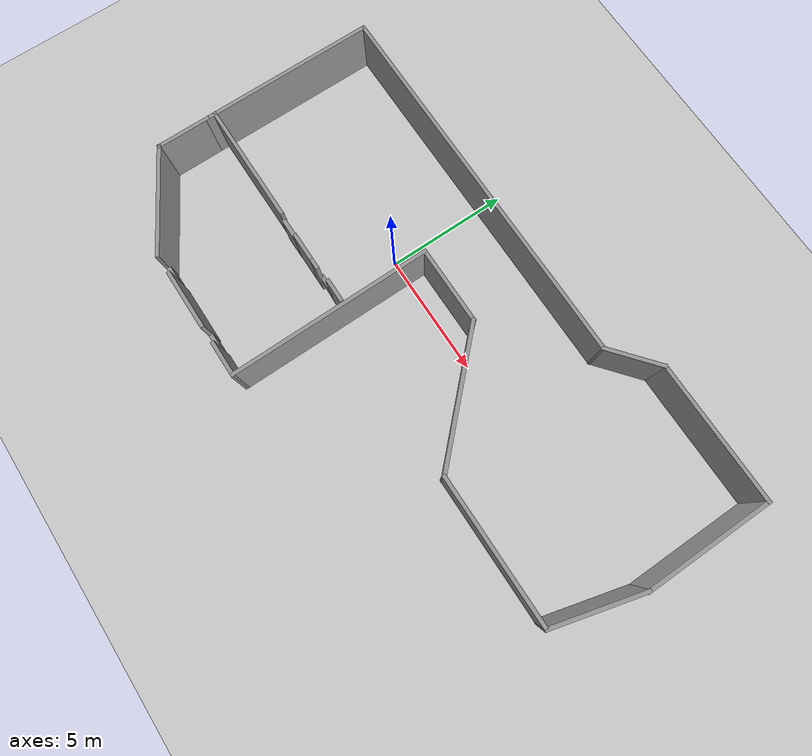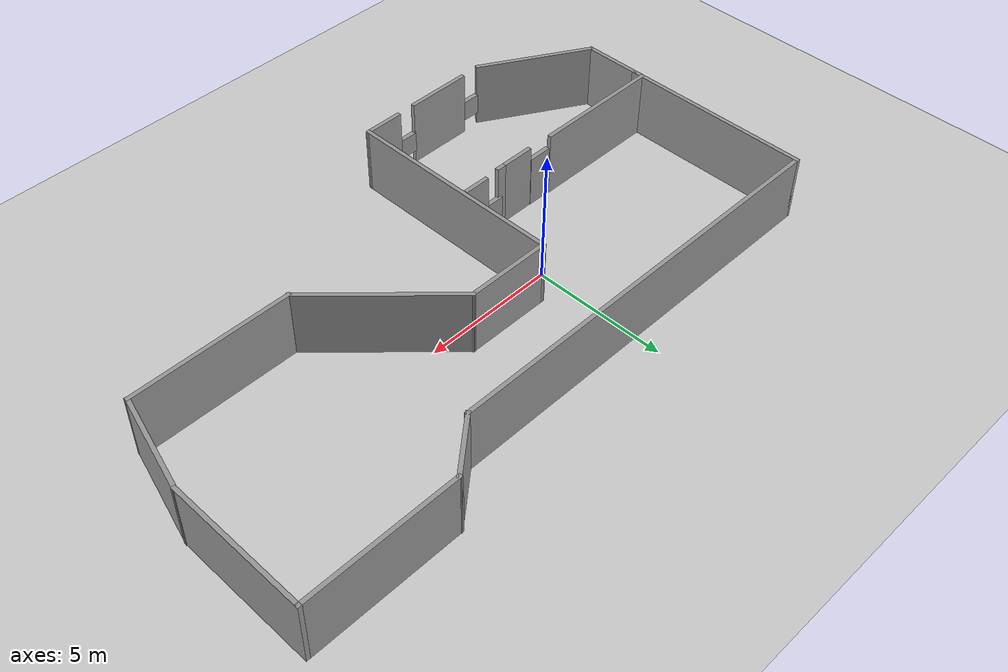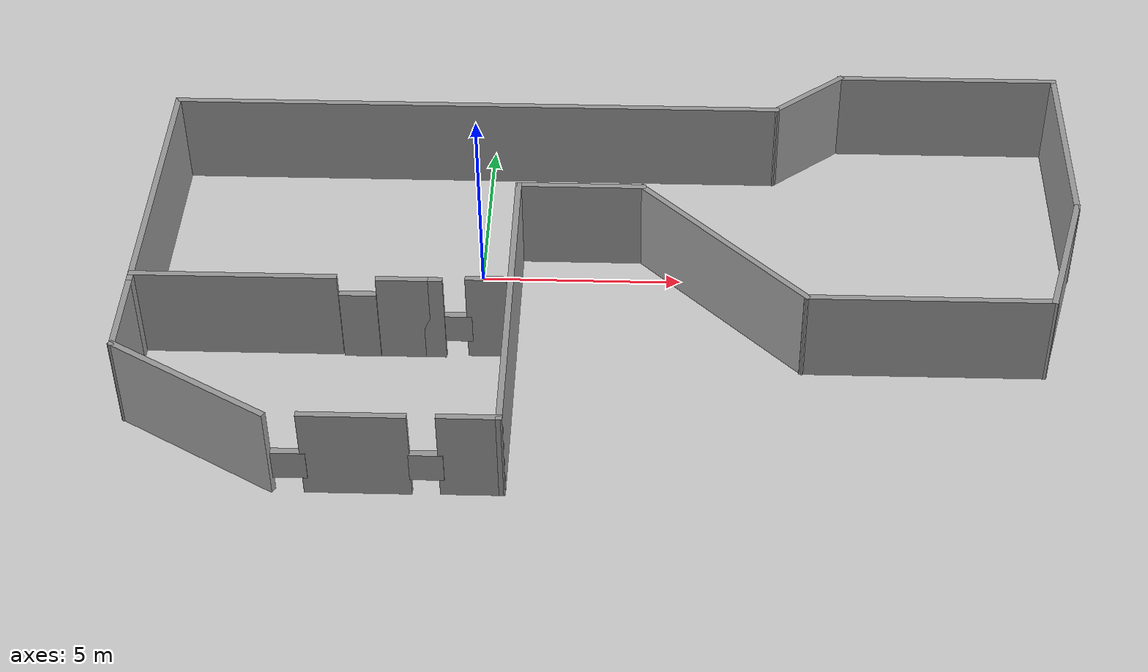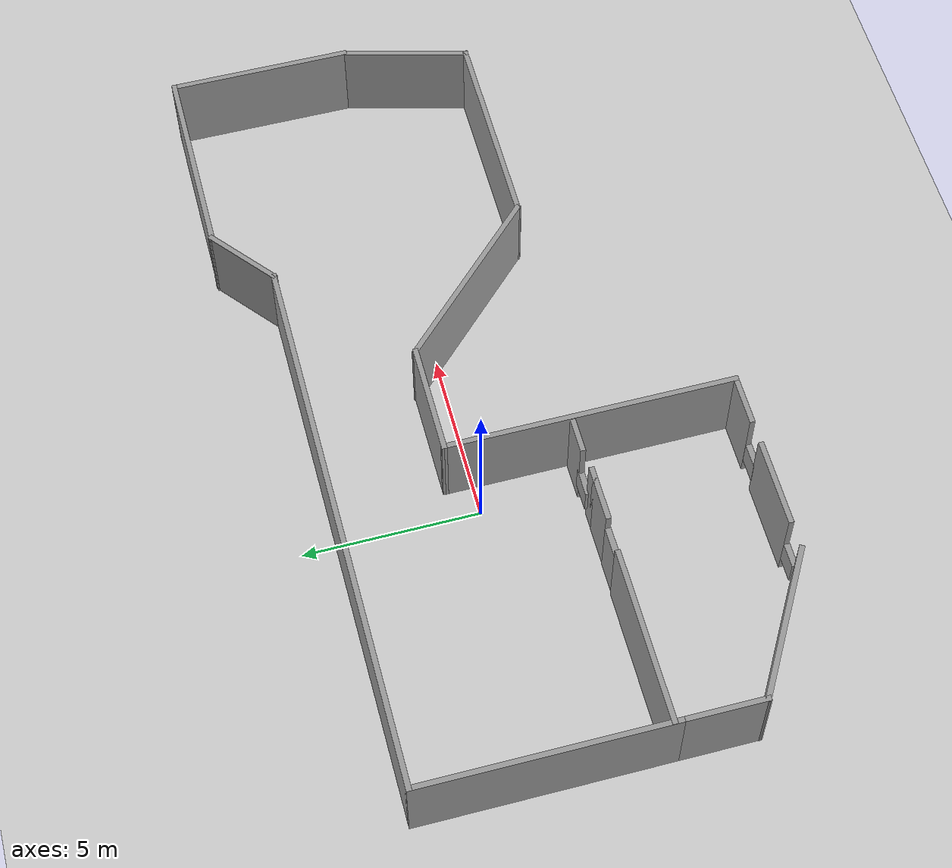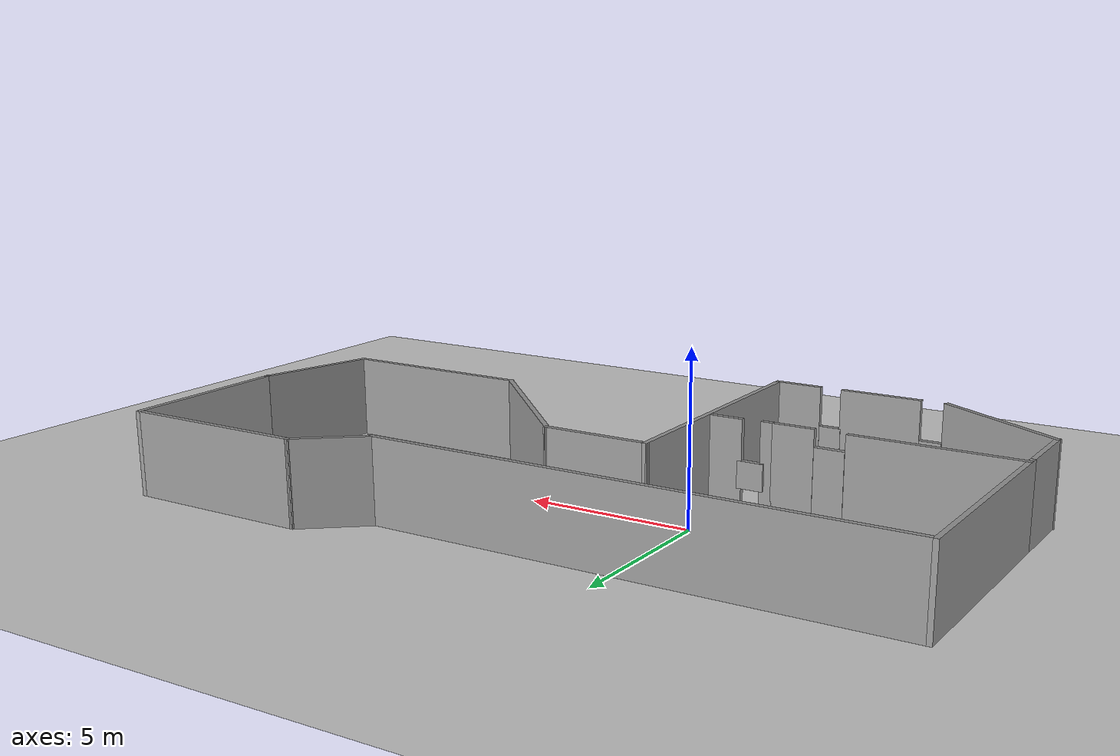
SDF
<sdf version="1.7">
 <world name="default">
  <light name="sun" type="directional">
   <pose>0 0 10 0 -0 0</pose>
   <diffuse>0.8 0.8 0.8 1</diffuse>
   <specular>0.2 0.2 0.2 1</specular>
   <attenuation>
    <range>1000</range>
    <constant>0.9</constant>
    <linear>0.01</linear>
    <quadratic>0.001</quadratic>
   </attenuation>
   <direction>-0.5 0.1 -0.9</direction>
   <spot><inner_angle>0</inner_angle><outer_angle>0</outer_angle><falloff>0</falloff></spot>
  </light>
  <model name="ground_plane">
   <static>1</static>
   <link name="link">
    <collision name="collision">
     <geometry><plane><normal>0 0 1</normal><size>100 100</size></plane></geometry>
     <surface><friction><ode><mu>100</mu><mu2>50</mu2></ode></friction></surface>
    </collision>
    <visual name="visual">
     <cast_shadows>0</cast_shadows>
     <geometry><plane><normal>0 0 1</normal><size>100 100</size></plane></geometry>
     <material>
      <script><uri>file://media/materials/scripts/gazebo.material</uri><name>Gazebo/Grey</name></script>
     </material>
    </visual>
   </link>
  </model>
  <gravity>0 0 -9.8</gravity>
  <magnetic_field>6e-06 2.3e-05 -4.2e-05</magnetic_field>
  <atmosphere type="adiabatic"/>
  <physics type="ode">
   <max_step_size>0.001</max_step_size>
   <real_time_factor>1</real_time_factor>
   <real_time_update_rate>1000</real_time_update_rate>
  </physics>
  <scene><ambient>0.4 0.4 0.4 1</ambient><background>0.7 0.7 0.7 1</background><shadows>1</shadows></scene>
  <audio><device>default</device></audio>
  <spherical_coordinates>
   <surface_model>EARTH_WGS84</surface_model>
   <latitude_deg>0</latitude_deg>
   <longitude_deg>0</longitude_deg>
   <elevation>0</elevation>
   <heading_deg>0</heading_deg>
  </spherical_coordinates>
  <model name="test_home">
   <pose>3.29473 -0.99292 0 0 -0 0</pose>
   <link name="Door_0">
    <collision name="Door_0_Collision">
     <geometry><box><size>0.9 0.17 2</size></box></geometry>
     <pose>0 0 1 0 -0 0</pose>
    </collision>
    <visual name="Door_0_Visual">
     <pose>0 0 1 0 -0 0</pose>
     <geometry><box><size>0.9 0.17 2</size></box></geometry>
     <material>
      <script><uri>file://media/materials/scripts/gazebo.material</uri><name>Gazebo/Grey</name></script>
     </material>
    </visual>
    <pose>-6.05072 -1.82209 0 0 -0 0</pose>
   </link>
   <link name="Wall_0">
    <collision name="Wall_0_Collision">
     <geometry><box><size>2.5 0.15 2.5</size></box></geometry>
     <pose>0 0 1.25 0 -0 0</pose>
    </collision>
    <visual name="Wall_0_Visual">
     <pose>0 0 1.25 0 -0 0</pose>
     <geometry><box><size>2.5 0.15 2.5</size></box></geometry>
     <material>
      <script><uri>file://media/materials/scripts/gazebo.material</uri><name>Gazebo/Grey</name></script>
      <ambient>1 1 1 1</ambient>
     </material>
     <meta><layer>0</layer></meta>
    </visual>
    <pose>-5.67006 -6.37868 0 0 -0 3.14159</pose>
   </link>
   <link name="Wall_11">
    <collision name="Wall_11_Collision">
     <geometry><box><size>15.75 0.15 2.5</size></box></geometry>
     <pose>0 0 1.25 0 -0 0</pose>
    </collision>
    <visual name="Wall_11_Visual">
     <pose>0 0 1.25 0 -0 0</pose>
     <geometry><box><size>15.75 0.15 2.5</size></box></geometry>
     <material>
      <script><uri>file://media/materials/scripts/gazebo.material</uri><name>Gazebo/Grey</name></script>
      <ambient>1 1 1 1</ambient>
     </material>
     <meta><layer>0</layer></meta>
    </visual>
    <pose>-3.65448 4.98274 0 0 -0 0</pose>
   </link>
   <link name="Wall_13">
    <collision name="Wall_13_Collision">
     <geometry><box><size>3.25 0.15 2.5</size></box></geometry>
     <pose>0 0 1.25 0 -0 0</pose>
    </collision>
    <visual name="Wall_13_Visual">
     <pose>0 0 1.25 0 -0 0</pose>
     <geometry><box><size>3.25 0.15 2.5</size></box></geometry>
     <material>
      <script><uri>file://media/materials/scripts/gazebo.material</uri><name>Gazebo/Grey</name></script>
      <ambient>1 1 1 1</ambient>
     </material>
     <meta><layer>0</layer></meta>
    </visual>
    <pose>-0.826473 1.77164 0 0 -0 0</pose>
   </link>
   <link name="Wall_14">
    <collision name="Wall_14_Collision">
     <geometry><box><size>5.75 0.15 2.5</size></box></geometry>
     <pose>0 0 1.25 0 -0 0</pose>
    </collision>
    <visual name="Wall_14_Visual">
     <pose>0 0 1.25 0 -0 0</pose>
     <geometry><box><size>5.75 0.15 2.5</size></box></geometry>
     <material>
      <script><uri>file://media/materials/scripts/gazebo.material</uri><name>Gazebo/Grey</name></script>
      <ambient>1 1 1 1</ambient>
     </material>
     <meta><layer>0</layer></meta>
    </visual>
    <pose>2.70343 -0.208257 0 0 -0 -0.785398</pose>
   </link>
   <link name="Wall_15">
    <collision name="Wall_15_Collision">
     <geometry><box><size>6 0.15 2.5</size></box></geometry>
     <pose>0 0 1.25 0 -0 0</pose>
    </collision>
    <visual name="Wall_15_Visual">
     <pose>0 0 1.25 0 -0 0</pose>
     <geometry><box><size>6 0.15 2.5</size></box></geometry>
     <material>
      <script><uri>file://media/materials/scripts/gazebo.material</uri><name>Gazebo/Grey</name></script>
      <ambient>1 1 1 1</ambient>
     </material>
     <meta><layer>0</layer></meta>
    </visual>
    <pose>7.60832 -2.18816 0 0 -0 0</pose>
   </link>
   <link name="Wall_16">
    <collision name="Wall_16_Collision">
     <geometry><box><size>3.75 0.15 2.5</size></box></geometry>
     <pose>0 0 1.25 0 -0 0</pose>
    </collision>
    <visual name="Wall_16_Visual">
     <pose>0 0 1.25 0 -0 0</pose>
     <geometry><box><size>3.75 0.15 2.5</size></box></geometry>
     <material>
      <script><uri>file://media/materials/scripts/gazebo.material</uri><name>Gazebo/Grey</name></script>
      <ambient>1 1 1 1</ambient>
     </material>
     <meta><layer>0</layer></meta>
    </visual>
    <pose>10.9992 -0.449489 0 0 -0 1.309</pose>
   </link>
   <link name="Wall_17">
    <collision name="Wall_17_Collision">
     <geometry><box><size>5.25 0.15 2.5</size></box></geometry>
     <pose>0 0 1.25 0 -0 0</pose>
    </collision>
    <visual name="Wall_17_Visual">
     <pose>0 0 1.25 0 -0 0</pose>
     <geometry><box><size>5.25 0.15 2.5</size></box></geometry>
     <material>
      <script><uri>file://media/materials/scripts/gazebo.material</uri><name>Gazebo/Grey</name></script>
      <ambient>1 1 1 1</ambient>
     </material>
     <meta><layer>0</layer></meta>
    </visual>
    <pose>11.4651 3.83918 0 0 -0 1.5708</pose>
   </link>
   <link name="Wall_18">
    <collision name="Wall_18_Collision">
     <geometry><box><size>5.75 0.15 2.5</size></box></geometry>
     <pose>0 0 1.25 0 -0 0</pose>
    </collision>
    <visual name="Wall_18_Visual">
     <pose>0 0 1.25 0 -0 0</pose>
     <geometry><box><size>5.75 0.15 2.5</size></box></geometry>
     <material>
      <script><uri>file://media/materials/scripts/gazebo.material</uri><name>Gazebo/Grey</name></script>
      <ambient>1 1 1 1</ambient>
     </material>
     <meta><layer>0</layer></meta>
    </visual>
    <pose>8.66507 6.38918 0 0 -0 3.14159</pose>
   </link>
   <link name="Wall_19">
    <collision name="Wall_19_Collision">
     <geometry><box><size>2.37147 0.15 2.5</size></box></geometry>
     <pose>0 0 1.25 0 -0 0</pose>
    </collision>
    <visual name="Wall_19_Visual">
     <pose>0 0 1.25 0 -0 0</pose>
     <geometry><box><size>2.37147 0.15 2.5</size></box></geometry>
     <material>
      <script><uri>file://media/materials/scripts/gazebo.material</uri><name>Gazebo/Grey</name></script>
      <ambient>1 1 1 1</ambient>
     </material>
     <meta><layer>0</layer></meta>
    </visual>
    <pose>5.0053 5.68596 0 0 -0 -2.45602</pose>
   </link>
   <link name="Wall_2">
    <collision name="Wall_2_Collision">
     <geometry><box><size>4.5 0.15 2.5</size></box></geometry>
     <pose>0 0 1.25 0 -0 0</pose>
    </collision>
    <visual name="Wall_2_Visual">
     <pose>0 0 1.25 0 -0 0</pose>
     <geometry><box><size>4.5 0.15 2.5</size></box></geometry>
     <material>
      <script><uri>file://media/materials/scripts/gazebo.material</uri><name>Gazebo/Grey</name></script>
      <ambient>1 1 1 1</ambient>
     </material>
     <meta><layer>0</layer></meta>
    </visual>
    <pose>-9.57087 -5.30476 0 0 -0 2.61799</pose>
   </link>
   <link name="Wall_21">
    <collision name="Wall_21_Collision">
     <geometry><box><size>5 0.15 2.5</size></box></geometry>
     <pose>0 0 1.25 0 -0 0</pose>
    </collision>
    <visual name="Wall_21_Visual">
     <pose>0 0 1.25 0 -0 0</pose>
     <geometry><box><size>5 0.15 2.5</size></box></geometry>
     <material>
      <script><uri>file://media/materials/scripts/gazebo.material</uri><name>Gazebo/Grey</name></script>
      <ambient>1 1 1 1</ambient>
     </material>
     <meta><layer>0</layer></meta>
    </visual>
    <pose>-9.01975 -1.78153 0 0 -0 0</pose>
   </link>
   <link name="Wall_23">
    <collision name="Wall_23_Collision">
     <geometry><box><size>1.25 0.15 2.5</size></box></geometry>
     <pose>0 0 1.25 0 -0 0</pose>
    </collision>
    <visual name="Wall_23_Visual">
     <pose>0 0 1.25 0 -0 0</pose>
     <geometry><box><size>1.25 0.15 2.5</size></box></geometry>
     <material>
      <script><uri>file://media/materials/scripts/gazebo.material</uri><name>Gazebo/Grey</name></script>
      <ambient>1 1 1 1</ambient>
     </material>
     <meta><layer>0</layer></meta>
    </visual>
    <pose>-4.967 -1.82338 0 0 -0 0</pose>
   </link>
   <link name="Wall_24">
    <collision name="Wall_24_Collision">
     <geometry><box><size>0.5 0.15 2.5</size></box></geometry>
     <pose>0 0 1.25 0 -0 0</pose>
    </collision>
    <visual name="Wall_24_Visual">
     <pose>0 0 1.25 0 -0 0</pose>
     <geometry><box><size>0.5 0.15 2.5</size></box></geometry>
     <material>
      <script><uri>file://media/materials/scripts/gazebo.material</uri><name>Gazebo/Grey</name></script>
      <ambient>1 1 1 1</ambient>
     </material>
     <meta><layer>0</layer></meta>
    </visual>
    <pose>-4.242 -1.82338 0 0 -0 0</pose>
   </link>
   <link name="Wall_26">
    <collision name="Wall_26_Collision">
     <geometry><box><size>1 0.15 2.5</size></box></geometry>
     <pose>0 0 1.25 0 -0 0</pose>
    </collision>
    <visual name="Wall_26_Visual">
     <pose>0 0 1.25 0 -0 0</pose>
     <geometry><box><size>1 0.15 2.5</size></box></geometry>
     <material>
      <script><uri>file://media/materials/scripts/gazebo.material</uri><name>Gazebo/Grey</name></script>
      <ambient>1 1 1 1</ambient>
     </material>
     <meta><layer>0</layer></meta>
    </visual>
    <pose>-2.95867 -1.75381 0 0 -0 0</pose>
   </link>
   <link name="Wall_3">
    <collision name="Wall_3_Collision">
     <geometry><box><size>2.25 0.15 2.5</size></box></geometry>
     <pose>0 0 1.25 0 -0 0</pose>
    </collision>
    <visual name="Wall_3_Visual">
     <pose>0 0 1.25 0 -0 0</pose>
     <geometry><box><size>2.25 0.15 2.5</size></box></geometry>
     <material>
      <script><uri>file://media/materials/scripts/gazebo.material</uri><name>Gazebo/Grey</name></script>
      <ambient>1 1 1 1</ambient>
     </material>
     <meta><layer>0</layer></meta>
    </visual>
    <pose>-11.4545 -3.16726 0 0 -0 1.5708</pose>
   </link>
   <link name="Wall_5">
    <collision name="Wall_5_Collision">
     <geometry><box><size>1.5 0.15 2.5</size></box></geometry>
     <pose>0 0 1.25 0 -0 0</pose>
    </collision>
    <visual name="Wall_5_Visual">
     <pose>0 0 1.25 0 -0 0</pose>
     <geometry><box><size>1.5 0.15 2.5</size></box></geometry>
     <material>
      <script><uri>file://media/materials/scripts/gazebo.material</uri><name>Gazebo/Grey</name></script>
      <ambient>1 1 1 1</ambient>
     </material>
     <meta><layer>0</layer></meta>
    </visual>
    <pose>-3.0236 -6.3652 0 0 -0 0</pose>
   </link>
   <link name="Wall_6">
    <collision name="Wall_6_Collision">
     <geometry><box><size>8.28713 0.15 2.5</size></box></geometry>
     <pose>0 0 1.25 0 -0 0</pose>
    </collision>
    <visual name="Wall_6_Visual">
     <pose>0 0 1.25 0 -0 0</pose>
     <geometry><box><size>8.28713 0.15 2.5</size></box></geometry>
     <material>
      <script><uri>file://media/materials/scripts/gazebo.material</uri><name>Gazebo/Grey</name></script>
      <ambient>1 1 1 1</ambient>
     </material>
     <meta><layer>0</layer></meta>
    </visual>
    <pose>-2.36253 -2.29678 0 0 -0 1.57422</pose>
   </link>
   <link name="Wall_8">
    <collision name="Wall_8_Collision">
     <geometry><box><size>7.25 0.15 2.5</size></box></geometry>
     <pose>0 0 1.25 0 -0 0</pose>
    </collision>
    <visual name="Wall_8_Visual">
     <pose>0 0 1.25 0 -0 0</pose>
     <geometry><box><size>7.25 0.15 2.5</size></box></geometry>
     <material>
      <script><uri>file://media/materials/scripts/gazebo.material</uri><name>Gazebo/Grey</name></script>
      <ambient>1 1 1 1</ambient>
     </material>
     <meta><layer>0</layer></meta>
    </visual>
    <pose>-11.4545 1.43274 0 0 -0 1.5708</pose>
   </link>
   <link name="Window_0">
    <collision name="Window_0_Collision">
     <geometry><box><size>0.8 0.17 0.8</size></box></geometry>
     <pose>0 0 0.4 0 -0 0</pose>
    </collision>
    <visual name="Window_0_Visual">
     <pose>0 0 0.4 0 -0 0</pose>
     <geometry><box><size>0.8 0.17 0.8</size></box></geometry>
     <material>
      <script><uri>file://media/materials/scripts/gazebo.material</uri><name>Gazebo/Grey</name></script>
     </material>
    </visual>
    <pose>-7.19506 -6.38868 0.5 0 -0 0</pose>
   </link>
   <link name="Window_1">
    <collision name="Window_1_Collision">
     <geometry><box><size>0.8 0.17 0.8</size></box></geometry>
     <pose>0 0 0.4 0 -0 0</pose>
    </collision>
    <visual name="Window_1_Visual">
     <pose>0 0 0.4 0 -0 0</pose>
     <geometry><box><size>0.8 0.17 0.8</size></box></geometry>
     <material>
      <script><uri>file://media/materials/scripts/gazebo.material</uri><name>Gazebo/Grey</name></script>
     </material>
    </visual>
    <pose>-4.05506 -6.37868 0.5 0 -0 0</pose>
   </link>
   <link name="Window_4">
    <collision name="Window_4_Collision">
     <geometry><box><size>0.8 0.17 0.8</size></box></geometry>
     <pose>0 0 0.4 0 -0 0</pose>
    </collision>
    <visual name="Window_4_Visual">
     <pose>0 0 0.4 0 -0 0</pose>
     <geometry><box><size>0.8 0.17 0.8</size></box></geometry>
     <material>
      <script><uri>file://media/materials/scripts/gazebo.material</uri><name>Gazebo/Grey</name></script>
     </material>
    </visual>
    <pose>-3.73149 -1.75381 0.5 0 -0 0</pose>
   </link>
   <static>1</static>
  </model>
 </world>
</sdf>
